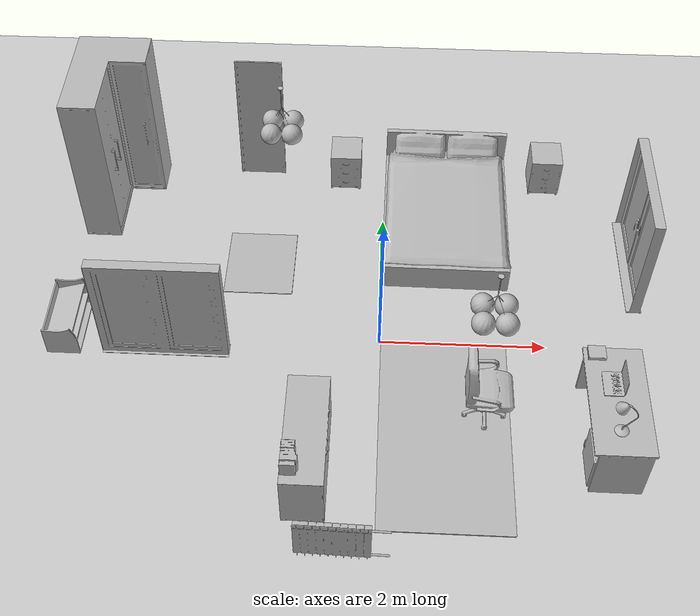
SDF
<sdf version="1.4">
 <world name="default">
  <light name="sun" type="directional">
   <pose>0 0 10 0 -0 0</pose>
   <diffuse>0.8 0.8 0.8 1</diffuse>
   <specular>0.2 0.2 0.2 1</specular>
   <attenuation>
    <range>1000</range>
    <constant>0.9</constant>
    <linear>0.01</linear>
    <quadratic>0.001</quadratic>
   </attenuation>
   <direction>-0.5 0.1 -0.9</direction>
  </light>
  <model name="ground_plane">
   <static>1</static>
   <link name="link">
    <collision name="collision">
     <geometry><plane><normal>0 0 1</normal><size>100 100</size></plane></geometry>
     <surface><friction><ode><mu>100</mu><mu2>50</mu2></ode></friction></surface>
    </collision>
    <visual name="visual">
     <cast_shadows>0</cast_shadows>
     <geometry><plane><normal>0 0 1</normal><size>100 100</size></plane></geometry>
     <material>
      <script><uri>file://media/materials/scripts/gazebo.material</uri><name>Gazebo/Grey</name></script>
     </material>
    </visual>
    <velocity_decay><linear>0</linear><angular>0</angular></velocity_decay>
   </link>
  </model>
  <physics type="ode">
   <max_step_size>0.001</max_step_size>
   <real_time_factor>1</real_time_factor>
   <real_time_update_rate>1000</real_time_update_rate>
   <gravity>0 0 -9.8</gravity>
  </physics>
  <scene><ambient>0.4 0.4 0.4 1</ambient><background>0.7 0.7 0.7 1</background><shadows>1</shadows></scene>
  <spherical_coordinates>
   <surface_model>EARTH_WGS84</surface_model>
   <latitude_deg>0</latitude_deg>
   <longitude_deg>0</longitude_deg>
   <elevation>0</elevation>
   <heading_deg>0</heading_deg>
  </spherical_coordinates>
  <model name="212_0">
   <pose>-2.35828 -0.868612 0.85 0 -0 1.5708</pose>
   <static>1</static>
   <link name="link">
    <collision name="collision"><geometry><box><size>0.175 1.4 2</size></box></geometry></collision>
    <visual name="visual"><geometry><mesh><uri>model://212/212.dae</uri></mesh></geometry></visual>
    <velocity_decay><linear>0</linear><angular>0</angular></velocity_decay>
   </link>
  </model>
  <model name="212_1">
   <pose>2.89252 0.605141 0.85 0 -0 3.14159</pose>
   <static>1</static>
   <link name="link">
    <collision name="collision"><geometry><box><size>0.175 1.4 2</size></box></geometry></collision>
    <visual name="visual"><geometry><mesh><uri>model://212/212.dae</uri></mesh></geometry></visual>
    <velocity_decay><linear>0</linear><angular>0</angular></velocity_decay>
   </link>
  </model>
  <model name="75_0">
   <pose>0.80098 1.89561 0.05 0 0 -1.57839</pose>
   <static>1</static>
   <link name="link">
    <collision name="collision"><geometry><box><size>2.1 1.61002 2</size></box></geometry></collision>
    <visual name="visual"><geometry><mesh><uri>model://75/75.dae</uri></mesh></geometry></visual>
    <velocity_decay><linear>0</linear><angular>0</angular></velocity_decay>
   </link>
  </model>
  <model name="404_0">
   <pose>-0.516283 2.73024 0.05 0 0 -1.5708</pose>
   <static>1</static>
   <link name="link">
    <collision name="collision"><geometry><box><size>0.449743 0.399884 2</size></box></geometry></collision>
    <visual name="visual"><geometry><mesh><uri>model://404/404.dae</uri></mesh></geometry></visual>
    <velocity_decay><linear>0</linear><angular>0</angular></velocity_decay>
   </link>
  </model>
  <model name="404_1">
   <pose>2.13571 2.74874 0.05 0 0 -1.5708</pose>
   <static>1</static>
   <link name="link">
    <collision name="collision"><geometry><box><size>0.449743 0.399884 2</size></box></geometry></collision>
    <visual name="visual"><geometry><mesh><uri>model://404/404.dae</uri></mesh></geometry></visual>
    <velocity_decay><linear>0</linear><angular>0</angular></velocity_decay>
   </link>
  </model>
  <model name="615_0">
   <pose>-0.751213 -1.79876 0.05 0 -0 0</pose>
   <static>1</static>
   <link name="link">
    <collision name="collision"><geometry><box><size>0.48 1.36 2</size></box></geometry></collision>
    <visual name="visual"><geometry><mesh><uri>model://615/615.dae</uri></mesh></geometry></visual>
    <velocity_decay><linear>0</linear><angular>0</angular></velocity_decay>
   </link>
  </model>
  <model name="187_0">
   <pose>-3.40661 2.22705 0.05 0 -0 0</pose>
   <static>1</static>
   <link name="link">
    <collision name="collision"><geometry><box><size>0.899921 1.35 2</size></box></geometry></collision>
    <visual name="visual"><geometry><mesh><uri>model://187/187.dae</uri></mesh></geometry></visual>
    <velocity_decay><linear>0</linear><angular>0</angular></velocity_decay>
   </link>
  </model>
  <model name="292_0">
   <pose>-3.76282 0.018504 0.05 0 -0 0</pose>
   <static>1</static>
   <link name="link">
    <collision name="collision"><geometry><box><size>0.4 0.8 2</size></box></geometry></collision>
    <visual name="visual"><geometry><mesh><uri>model://292/292.dae</uri></mesh></geometry></visual>
    <velocity_decay><linear>0</linear><angular>0</angular></velocity_decay>
   </link>
  </model>
  <model name="239_0">
   <pose>-1.65816 2.89433 0.05 0 0 -1.5708</pose>
   <static>1</static>
   <link name="link">
    <collision name="collision"><geometry><box><size>0.149704 0.6 2</size></box></geometry></collision>
    <visual name="visual"><geometry><mesh><uri>model://239/239.dae</uri></mesh></geometry></visual>
    <velocity_decay><linear>0</linear><angular>0</angular></velocity_decay>
   </link>
  </model>
  <model name="238_0">
   <pose>0.767712 -1.30886 0.05 0 -0 0</pose>
   <static>1</static>
   <link name="link">
    <collision name="collision"><geometry><box><size>1.5 2.5 0</size></box></geometry></collision>
    <visual name="visual"><geometry><mesh><uri>model://238/238.dae</uri></mesh></geometry></visual>
    <velocity_decay><linear>0</linear><angular>0</angular></velocity_decay>
   </link>
  </model>
  <model name="153_0">
   <pose>-1.53628 1.15114 0.05 0 -0 0</pose>
   <static>1</static>
   <link name="link">
    <collision name="collision"><geometry><box><size>0.86 1 0</size></box></geometry></collision>
    <visual name="visual"><geometry><mesh><uri>model://153/153.dae</uri></mesh></geometry></visual>
    <velocity_decay><linear>0</linear><angular>0</angular></velocity_decay>
   </link>
  </model>
  <model name="632_0">
   <pose>1.12772 -1.21286 1.99 0 -0 0</pose>
   <static>1</static>
   <link name="link">
    <collision name="collision"><geometry><box><size>0.48 0.48 0</size></box></geometry></collision>
    <visual name="visual"><geometry><mesh><uri>model://632/632.dae</uri></mesh></geometry></visual>
    <velocity_decay><linear>0</linear><angular>0</angular></velocity_decay>
   </link>
  </model>
  <model name="632_1">
   <pose>-1.21229 1.45114 1.99 0 -0 0</pose>
   <static>1</static>
   <link name="link">
    <collision name="collision"><geometry><box><size>0.48 0.48 0</size></box></geometry></collision>
    <visual name="visual"><geometry><mesh><uri>model://632/632.dae</uri></mesh></geometry></visual>
    <velocity_decay><linear>0</linear><angular>0</angular></velocity_decay>
   </link>
  </model>
  <model name="108_0">
   <pose>2.59839 -1.27322 0.05 0 -0 3.14123</pose>
   <static>1</static>
   <link name="link">
    <collision name="collision"><geometry><box><size>0.66 1.4 2</size></box></geometry></collision>
    <visual name="visual"><geometry><mesh><uri>model://108/108.dae</uri></mesh></geometry></visual>
    <velocity_decay><linear>0</linear><angular>0</angular></velocity_decay>
   </link>
  </model>
  <model name="106_0">
   <pose>1.24771 -0.984859 0.05 0 -0 3.14159</pose>
   <static>1</static>
   <link name="link">
    <collision name="collision"><geometry><box><size>0.550393 0.596196 2</size></box></geometry></collision>
    <visual name="visual"><geometry><mesh><uri>model://106/106.dae</uri></mesh></geometry></visual>
    <velocity_decay><linear>0</linear><angular>0</angular></velocity_decay>
   </link>
  </model>
  <model name="120_0">
   <pose>2.55043 -1.06886 0.8 0 -0 3.14159</pose>
   <static>1</static>
   <link name="link">
    <collision name="collision"><geometry><box><size>0.225973 0.32 2</size></box></geometry></collision>
    <visual name="visual"><geometry><mesh><uri>model://120/120.dae</uri></mesh></geometry></visual>
    <velocity_decay><linear>0</linear><angular>0</angular></velocity_decay>
   </link>
  </model>
  <model name="510_0">
   <pose>-0.321298 -2.91086 0.19 0 -0 1.54458</pose>
   <static>1</static>
   <link name="link">
    <collision name="collision"><geometry><box><size>0.1 0.99977 2</size></box></geometry></collision>
    <visual name="visual"><geometry><mesh><uri>model://510/510.dae</uri></mesh></geometry></visual>
    <velocity_decay><linear>0</linear><angular>0</angular></velocity_decay>
   </link>
  </model>
  <model name="148_0">
   <pose>2.4109 -0.672778 0.806576 0 -0 0</pose>
   <static>1</static>
   <link name="link">
    <collision name="collision"><geometry><box><size>0.2 0.17 0</size></box></geometry></collision>
    <visual name="visual"><geometry><mesh><uri>model://148/148.dae</uri></mesh></geometry></visual>
    <velocity_decay><linear>0</linear><angular>0</angular></velocity_decay>
   </link>
  </model>
  <model name="320_0">
   <pose>-0.88816 -2.22369 0.812415 0 -0 0</pose>
   <static>1</static>
   <link name="link">
    <collision name="collision"><geometry><box><size>0.18708 0.300509 2</size></box></geometry></collision>
    <visual name="visual"><geometry><mesh><uri>model://320/320.dae</uri></mesh></geometry></visual>
    <velocity_decay><linear>0</linear><angular>0</angular></velocity_decay>
   </link>
  </model>
  <model name="256_0">
   <pose>2.57676 -1.66339 0.8 0 -0 2.31941</pose>
   <static>1</static>
   <link name="link">
    <collision name="collision"><geometry><box><size>0.268048 0.156245 2</size></box></geometry></collision>
    <visual name="visual"><geometry><mesh><uri>model://256/256.dae</uri></mesh></geometry></visual>
    <velocity_decay><linear>0</linear><angular>0</angular></velocity_decay>
   </link>
  </model>
 </world>
</sdf>
